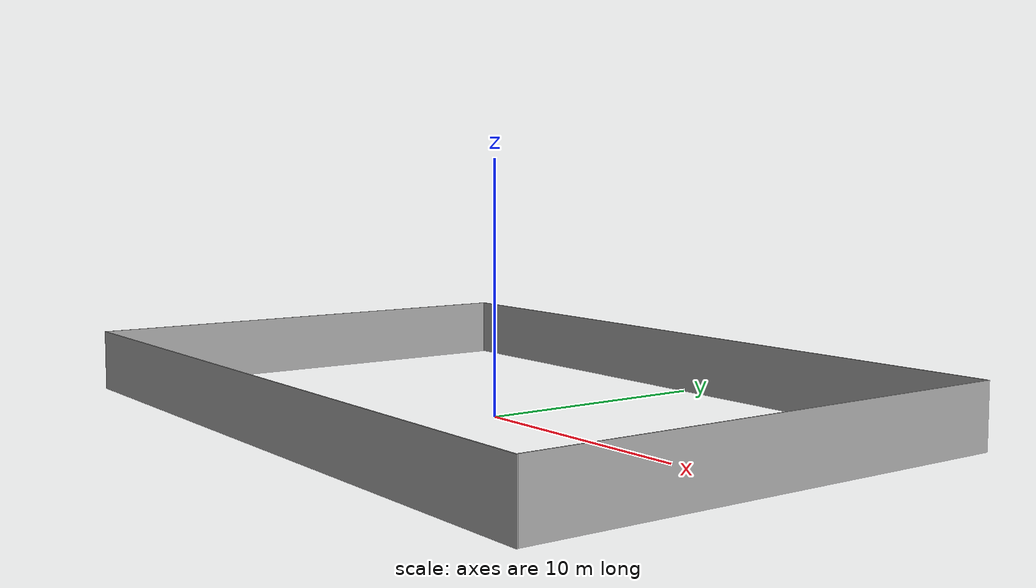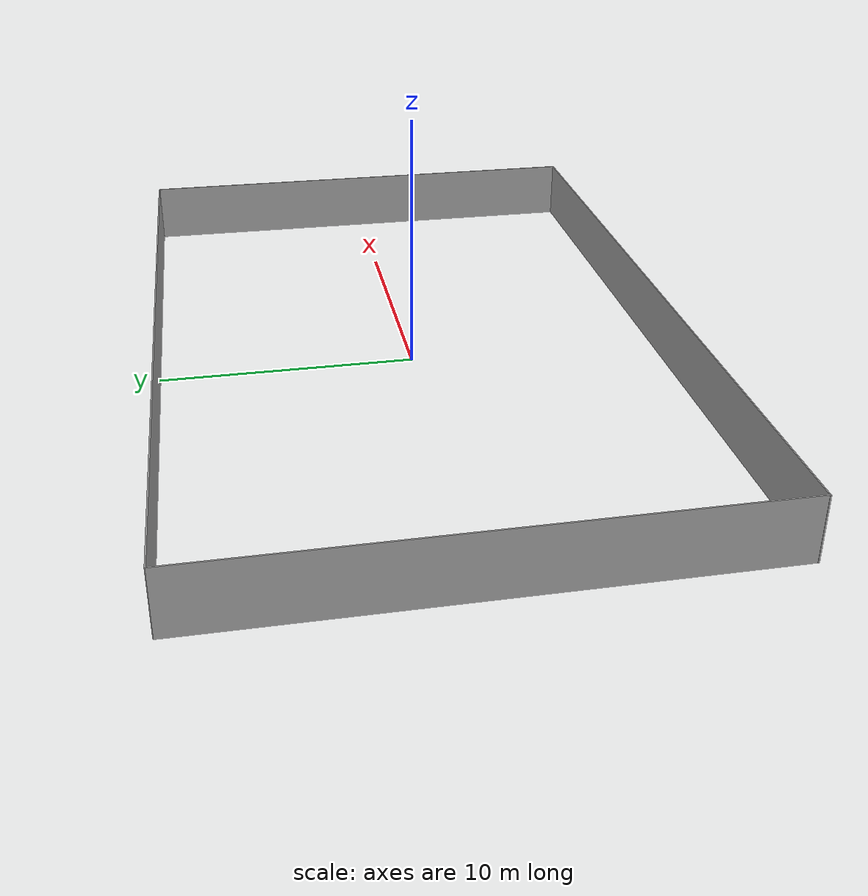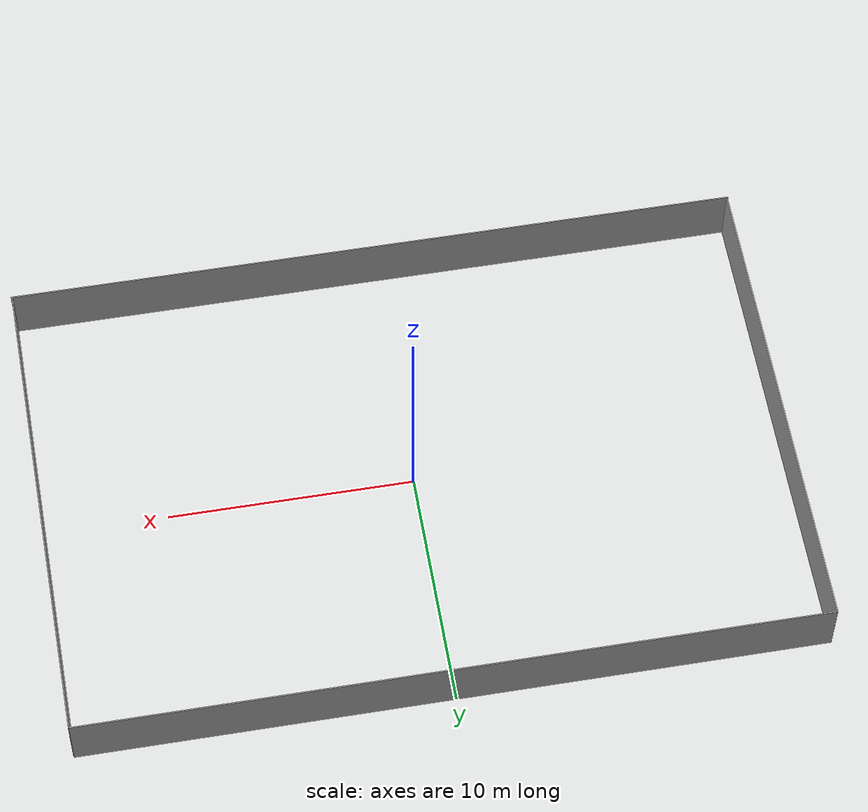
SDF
<?xml version='1.0'?>
<sdf version='1.6'>
  <model name='2020_imav_indoor_finished'>
    <pose frame=''>0 0 0 0 -0 0</pose>

    <!-- CHAO -->

    <!-- PAREDE ESQUERDA -->
    <link name='Wall_104'>
      <collision name='Wall_104_Collision'>
        <geometry>
          <box>
            <size>0.05 30 2.5</size>
          </box>
        </geometry>
        <pose frame=''>0 0 1.25 0 -0 0</pose>
      </collision>
      <visual name='Wall_104_Visual'>
        <pose frame=''>0 0 1.25 0 -0 0</pose>
        <geometry>
          <box>
            <size>0.05 30 2.5</size>
          </box>
        </geometry>
        <material>
          <script>
            <uri>file://media/materials/scripts/gazebo.material</uri>
            <name>Gazebo/Grey</name>
          </script>
          <ambient>1 1 1 1</ambient>
        </material>
        <meta>
          <layer>0</layer>
        </meta>
      </visual>
      <pose frame=''>0 10 0 0 -0 1.5708</pose>
    </link>

    <!-- PAREDE DIREITA -->
    <link name='Wall_103'>
      <collision name='Wall_103_Collision'>
        <geometry>
          <box>
            <size>0.05 30.1 2.5</size>
          </box>
        </geometry>
        <pose frame=''>0 0 1.25 0 -0 0</pose>
      </collision>
      <visual name='Wall_103_Visual'>
        <pose frame=''>0 0 1.25 0 -0 0</pose>
        <geometry>
          <box>
            <size>0.05 30.1 2.5</size>
          </box>
        </geometry>
        <material>
          <script>
            <uri>file://media/materials/scripts/gazebo.material</uri>
            <name>Gazebo/Grey</name>
          </script>
          <ambient>1 1 1 1</ambient>
        </material>
        <meta>
          <layer>0</layer>
        </meta>
      </visual>
      <pose frame=''>0 -10 0 0 -0 1.5708</pose>
    </link>

    <!-- PAREDE CIMA -->
    <link name='Wall_102'>
      <collision name='Wall_102_Collision'>
        <geometry>
          <box>
            <size>20 0.05 2.5</size>
          </box>
        </geometry>
        <pose frame=''>0 0 1.25 0 -0 0</pose>
      </collision>
      <visual name='Wall_102_Visual'>
        <pose frame=''>0 0 1.25 0 -0 0</pose>
        <geometry>
          <box>
            <size>20 0.05 2.5</size>
          </box>
        </geometry>
        <material>
          <script>
            <uri>file://media/materials/scripts/gazebo.material</uri>
            <name>Gazebo/Grey</name>
          </script>
          <ambient>1 1 1 1</ambient>
        </material>
        <meta>
          <layer>0</layer>
        </meta>
      </visual>
      <pose frame=''>15 0 0 0 -0 1.5708</pose>
    </link>

    <!-- PAREDE BAIXO -->
    <link name='Wall_101'>
      <collision name='Wall_101_Collision'>
        <geometry>
          <box>
            <size>20 0.05 2.5</size>
          </box>
        </geometry>
        <pose frame=''>0 0 1.25 0 -0 0</pose>
      </collision>
      <visual name='Wall_101_Visual'>
        <pose frame=''>0 0 1.25 0 -0 0</pose>
        <geometry>
          <box>
            <size>20 0.05 2.5</size>
          </box>
        </geometry>
        <material>
          <script>
            <uri>file://media/materials/scripts/gazebo.material</uri>
            <name>Gazebo/Grey</name>
          </script>
          <ambient>1 1 1 1</ambient>
        </material>
        <meta>
          <layer>0</layer>
        </meta>
      </visual>
      <pose frame=''>-15 0 0 0 -0 1.5708</pose>
    </link>

  </model>
</sdf>
